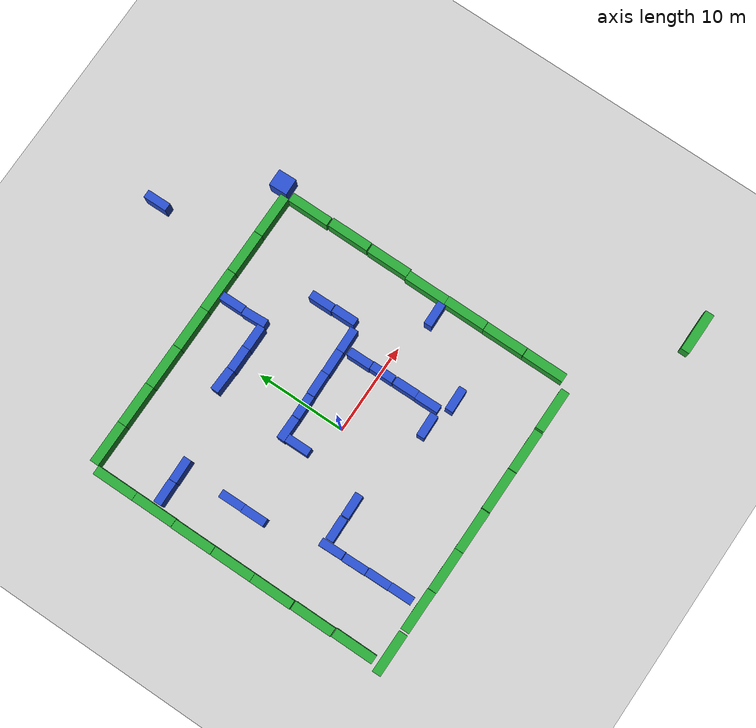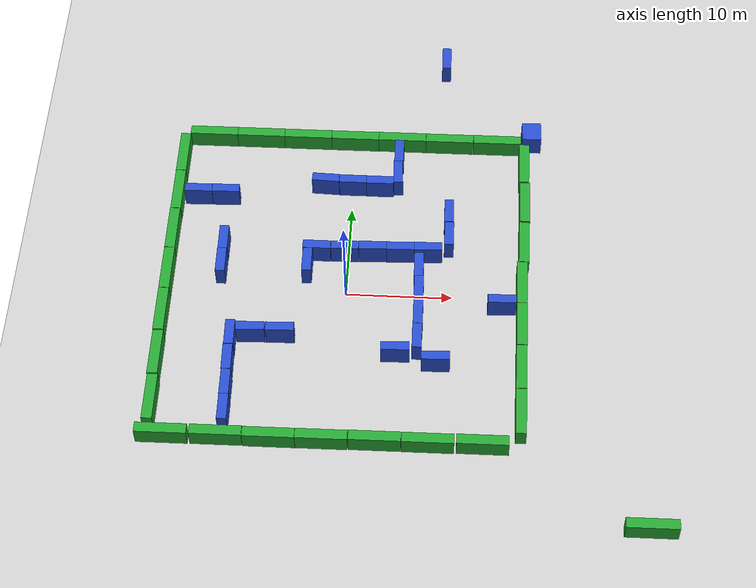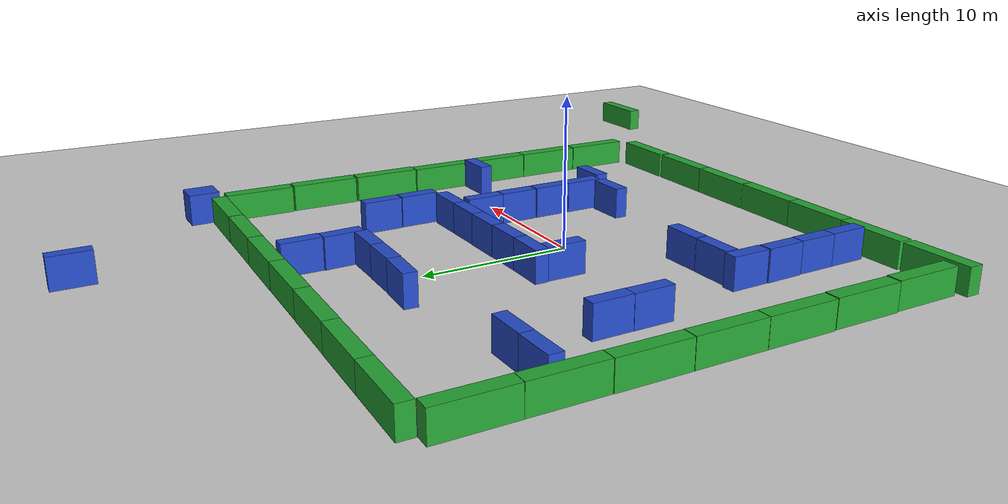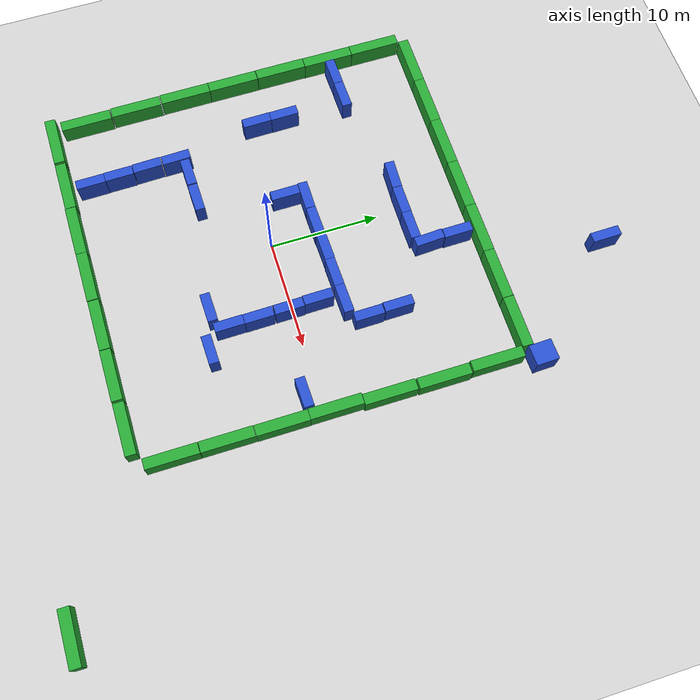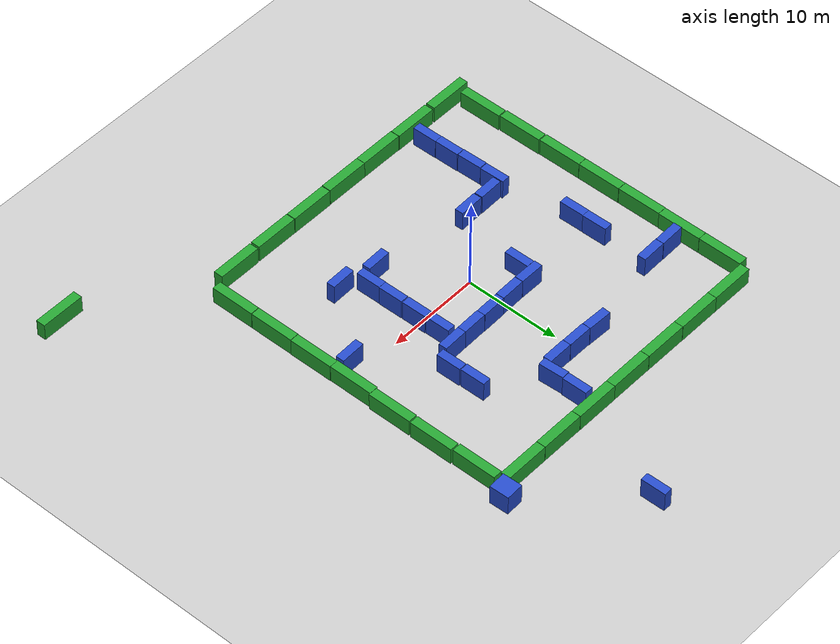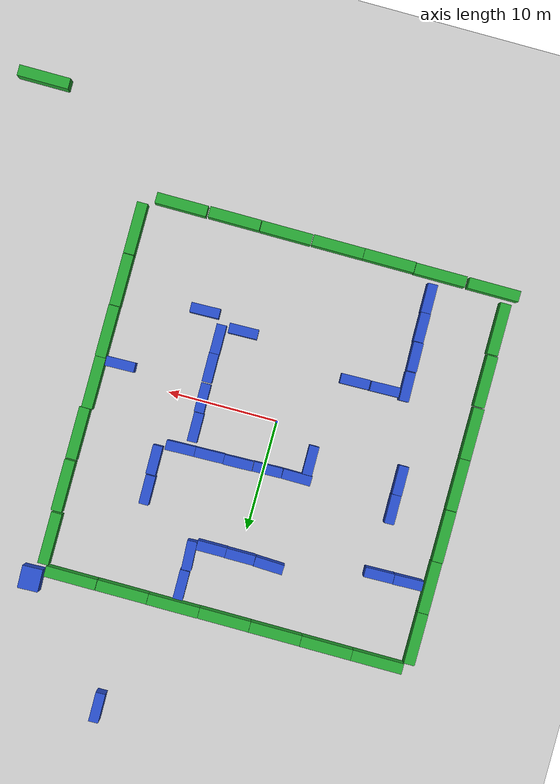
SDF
<sdf version="1.7">
 <world name="default">
  <light name="sun" type="directional">
   <pose>0 0 10 0 -0 0</pose>
   <diffuse>0.8 0.8 0.8 1</diffuse>
   <specular>0.2 0.2 0.2 1</specular>
   <attenuation>
    <range>1000</range>
    <constant>0.9</constant>
    <linear>0.01</linear>
    <quadratic>0.001</quadratic>
   </attenuation>
   <direction>-0.5 0.1 -0.9</direction>
   <spot><inner_angle>0</inner_angle><outer_angle>0</outer_angle><falloff>0</falloff></spot>
  </light>
  <model name="ground_plane">
   <static>1</static>
   <link name="link">
    <collision name="collision">
     <geometry><plane><normal>0 0 1</normal><size>100 100</size></plane></geometry>
     <surface><friction><ode><mu>100</mu><mu2>50</mu2></ode></friction></surface>
    </collision>
    <visual name="visual">
     <cast_shadows>0</cast_shadows>
     <geometry><plane><normal>0 0 1</normal><size>100 100</size></plane></geometry>
     <material>
      <script><uri>file://media/materials/scripts/gazebo.material</uri><name>Gazebo/Grey</name></script>
     </material>
    </visual>
   </link>
  </model>
  <gravity>0 0 -9.8</gravity>
  <magnetic_field>6e-06 2.3e-05 -4.2e-05</magnetic_field>
  <atmosphere type="adiabatic"/>
  <physics type="ode">
   <max_step_size>0.001</max_step_size>
   <real_time_factor>1</real_time_factor>
   <real_time_update_rate>1000</real_time_update_rate>
  </physics>
  <scene><ambient>0.4 0.4 0.4 1</ambient><background>0.7 0.7 0.7 1</background><shadows>1</shadows></scene>
  <audio><device>default</device></audio>
  <spherical_coordinates>
   <surface_model>EARTH_WGS84</surface_model>
   <latitude_deg>0</latitude_deg>
   <longitude_deg>0</longitude_deg>
   <elevation>0</elevation>
   <heading_deg>0</heading_deg>
  </spherical_coordinates>
  <model name="unit_box_clone_clone_clone_clone_0">
   <pose>16.5647 -13.2372 0.913087 1.5712 -0 0.000351</pose>
   <link name="link">
    <inertial>
     <mass>1</mass>
     <inertia>
      <ixx>0.166667</ixx>
      <ixy>0</ixy>
      <ixz>0</ixz>
      <iyy>0.166667</iyy>
      <iyz>0</iyz>
      <izz>0.166667</izz>
     </inertia>
    </inertial>
    <collision name="collision"><geometry><box><size>0.975842 1.82805 4.68867</size></box></geometry></collision>
    <visual name="visual">
     <geometry><box><size>0.975842 1.82805 4.68867</size></box></geometry>
     <material>
      <script><name>Gazebo/Green</name><uri>file://media/materials/scripts/gazebo.material</uri></script>
     </material>
    </visual>
   </link>
  </model>
  <model name="unit_box_clone_clone_clone_clone_0_clone">
   <pose>27.9476 -24.0351 0.913087 1.5712 -0 1.57032</pose>
   <link name="link">
    <inertial>
     <mass>1</mass>
     <inertia>
      <ixx>0.166667</ixx>
      <ixy>0</ixy>
      <ixz>0</ixz>
      <iyy>0.166667</iyy>
      <iyz>0</iyz>
      <izz>0.166667</izz>
     </inertia>
    </inertial>
    <collision name="collision"><geometry><box><size>0.975842 1.82805 4.68867</size></box></geometry></collision>
    <visual name="visual">
     <geometry><box><size>0.975842 1.82805 4.68867</size></box></geometry>
     <material>
      <script><name>Gazebo/Green</name><uri>file://media/materials/scripts/gazebo.material</uri></script>
     </material>
    </visual>
   </link>
  </model>
  <model name="unit_box_clone_clone_clone_clone_0_clone_clone">
   <pose>-1.19477 -16.4099 0.913087 1.5712 -0 1.57032</pose>
   <link name="link">
    <inertial>
     <mass>1</mass>
     <inertia>
      <ixx>0.166667</ixx>
      <ixy>0</ixy>
      <ixz>0</ixz>
      <iyy>0.166667</iyy>
      <iyz>0</iyz>
      <izz>0.166667</izz>
     </inertia>
    </inertial>
    <collision name="collision"><geometry><box><size>0.975842 1.82805 4.68867</size></box></geometry></collision>
    <visual name="visual">
     <geometry><box><size>0.975842 1.82805 4.68867</size></box></geometry>
     <material>
      <script><name>Gazebo/Green</name><uri>file://media/materials/scripts/gazebo.material</uri></script>
     </material>
    </visual>
   </link>
  </model>
  <model name="unit_box_clone_0_clone_clone">
   <pose>4.9362 -6.95728 1.06964 -0 1e-06 0.026942</pose>
   <link name="link">
    <inertial>
     <mass>1</mass>
     <inertia>
      <ixx>0.166667</ixx>
      <ixy>0</ixy>
      <ixz>0</ixz>
      <iyy>0.166667</iyy>
      <iyz>0</iyz>
      <izz>0.166667</izz>
     </inertia>
    </inertial>
    <collision name="collision"><geometry><box><size>2.64153 0.886604 2.13929</size></box></geometry></collision>
    <visual name="visual">
     <geometry><box><size>2.64153 0.886604 2.13929</size></box></geometry>
     <material>
      <script><name>Gazebo/Blue</name><uri>file://media/materials/scripts/gazebo.material</uri></script>
     </material>
    </visual>
   </link>
  </model>
  <model name="unit_box_clone_clone_clone_clone_0_clone_clone_clone">
   <pose>-5.89238 -16.4157 0.913087 1.5712 -0 1.57032</pose>
   <link name="link">
    <inertial>
     <mass>1</mass>
     <inertia>
      <ixx>0.166667</ixx>
      <ixy>0</ixy>
      <ixz>0</ixz>
      <iyy>0.166667</iyy>
      <iyz>0</iyz>
      <izz>0.166667</izz>
     </inertia>
    </inertial>
    <collision name="collision"><geometry><box><size>0.975842 1.82805 4.68867</size></box></geometry></collision>
    <visual name="visual">
     <geometry><box><size>0.975842 1.82805 4.68867</size></box></geometry>
     <material>
      <script><name>Gazebo/Green</name><uri>file://media/materials/scripts/gazebo.material</uri></script>
     </material>
    </visual>
   </link>
  </model>
  <model name="unit_box_clone_clone_clone_clone_0_clone_clone_clone_0">
   <pose>-10.6078 -16.3774 0.913087 1.5712 0 1.57127</pose>
   <link name="link">
    <inertial>
     <mass>1</mass>
     <inertia>
      <ixx>0.166667</ixx>
      <ixy>0</ixy>
      <ixz>0</ixz>
      <iyy>0.166667</iyy>
      <iyz>0</iyz>
      <izz>0.166667</izz>
     </inertia>
    </inertial>
    <collision name="collision"><geometry><box><size>0.975842 1.82805 4.68867</size></box></geometry></collision>
    <visual name="visual">
     <geometry><box><size>0.975842 1.82805 4.68867</size></box></geometry>
     <material>
      <script><name>Gazebo/Green</name><uri>file://media/materials/scripts/gazebo.material</uri></script>
     </material>
    </visual>
   </link>
  </model>
  <model name="unit_box_clone_clone_clone_clone_0_clone_clone_clone_1">
   <pose>-15.5212 -16.383 0.913087 1.5712 0 1.57127</pose>
   <link name="link">
    <inertial>
     <mass>1</mass>
     <inertia>
      <ixx>0.166667</ixx>
      <ixy>0</ixy>
      <ixz>0</ixz>
      <iyy>0.166667</iyy>
      <iyz>0</iyz>
      <izz>0.166667</izz>
     </inertia>
    </inertial>
    <collision name="collision"><geometry><box><size>0.975842 1.82805 4.68867</size></box></geometry></collision>
    <visual name="visual">
     <geometry><box><size>0.975842 1.82805 4.68867</size></box></geometry>
     <material>
      <script><name>Gazebo/Green</name><uri>file://media/materials/scripts/gazebo.material</uri></script>
     </material>
    </visual>
   </link>
  </model>
  <model name="unit_box_clone_clone_clone_clone_0_clone_clone_clone_1_clone">
   <pose>3.56397 -16.3814 0.913087 1.5712 -0 1.57032</pose>
   <link name="link">
    <inertial>
     <mass>1</mass>
     <inertia>
      <ixx>0.166667</ixx>
      <ixy>0</ixy>
      <ixz>0</ixz>
      <iyy>0.166667</iyy>
      <iyz>0</iyz>
      <izz>0.166667</izz>
     </inertia>
    </inertial>
    <collision name="collision"><geometry><box><size>0.975842 1.82805 4.68867</size></box></geometry></collision>
    <visual name="visual">
     <geometry><box><size>0.975842 1.82805 4.68867</size></box></geometry>
     <material>
      <script><name>Gazebo/Green</name><uri>file://media/materials/scripts/gazebo.material</uri></script>
     </material>
    </visual>
   </link>
  </model>
  <model name="unit_box_clone_clone_clone_clone_0_clone_clone_clone_1_clone_0">
   <pose>8.30631 -16.3923 0.913087 1.5712 -0 1.57032</pose>
   <link name="link">
    <inertial>
     <mass>1</mass>
     <inertia>
      <ixx>0.166667</ixx>
      <ixy>0</ixy>
      <ixz>0</ixz>
      <iyy>0.166667</iyy>
      <iyz>0</iyz>
      <izz>0.166667</izz>
     </inertia>
    </inertial>
    <collision name="collision"><geometry><box><size>0.975842 1.82805 4.68867</size></box></geometry></collision>
    <visual name="visual">
     <geometry><box><size>0.975842 1.82805 4.68867</size></box></geometry>
     <material>
      <script><name>Gazebo/Green</name><uri>file://media/materials/scripts/gazebo.material</uri></script>
     </material>
    </visual>
   </link>
  </model>
  <model name="unit_box_clone_clone_clone_clone_0_clone_clone_clone_1_clone_1">
   <pose>13.1905 -16.3598 0.913087 1.5712 -0 1.57032</pose>
   <link name="link">
    <inertial>
     <mass>1</mass>
     <inertia>
      <ixx>0.166667</ixx>
      <ixy>0</ixy>
      <ixz>0</ixz>
      <iyy>0.166667</iyy>
      <iyz>0</iyz>
      <izz>0.166667</izz>
     </inertia>
    </inertial>
    <collision name="collision"><geometry><box><size>0.975842 1.82805 4.68867</size></box></geometry></collision>
    <visual name="visual">
     <geometry><box><size>0.975842 1.82805 4.68867</size></box></geometry>
     <material>
      <script><name>Gazebo/Green</name><uri>file://media/materials/scripts/gazebo.material</uri></script>
     </material>
    </visual>
   </link>
  </model>
  <model name="unit_box_clone_clone_clone_clone_0_clone_0">
   <pose>16.5668 -8.50491 0.913087 1.5712 -0 0.000351</pose>
   <link name="link">
    <inertial>
     <mass>1</mass>
     <inertia>
      <ixx>0.166667</ixx>
      <ixy>0</ixy>
      <ixz>0</ixz>
      <iyy>0.166667</iyy>
      <iyz>0</iyz>
      <izz>0.166667</izz>
     </inertia>
    </inertial>
    <collision name="collision"><geometry><box><size>0.975842 1.82805 4.68867</size></box></geometry></collision>
    <visual name="visual">
     <geometry><box><size>0.975842 1.82805 4.68867</size></box></geometry>
     <material>
      <script><name>Gazebo/Green</name><uri>file://media/materials/scripts/gazebo.material</uri></script>
     </material>
    </visual>
   </link>
  </model>
  <model name="unit_box_clone_clone_clone_clone_0_clone_0_clone">
   <pose>16.5879 -3.7815 0.913087 1.5712 -0 0.000398</pose>
   <link name="link">
    <inertial>
     <mass>1</mass>
     <inertia>
      <ixx>0.166667</ixx>
      <ixy>0</ixy>
      <ixz>0</ixz>
      <iyy>0.166667</iyy>
      <iyz>0</iyz>
      <izz>0.166667</izz>
     </inertia>
    </inertial>
    <collision name="collision"><geometry><box><size>0.975842 1.82805 4.68867</size></box></geometry></collision>
    <visual name="visual">
     <geometry><box><size>0.975842 1.82805 4.68867</size></box></geometry>
     <material>
      <script><name>Gazebo/Green</name><uri>file://media/materials/scripts/gazebo.material</uri></script>
     </material>
    </visual>
   </link>
  </model>
  <model name="unit_box_clone_clone_clone_clone_0_clone_0_clone_0">
   <pose>16.5577 0.91163 0.913087 1.5712 -0 0.000398</pose>
   <link name="link">
    <inertial>
     <mass>1</mass>
     <inertia>
      <ixx>0.166667</ixx>
      <ixy>0</ixy>
      <ixz>0</ixz>
      <iyy>0.166667</iyy>
      <iyz>0</iyz>
      <izz>0.166667</izz>
     </inertia>
    </inertial>
    <collision name="collision"><geometry><box><size>0.975842 1.82805 4.68867</size></box></geometry></collision>
    <visual name="visual">
     <geometry><box><size>0.975842 1.82805 4.68867</size></box></geometry>
     <material>
      <script><name>Gazebo/Green</name><uri>file://media/materials/scripts/gazebo.material</uri></script>
     </material>
    </visual>
   </link>
  </model>
  <model name="unit_box_clone_clone_clone_clone_0_clone_0_clone_1">
   <pose>16.7233 5.61758 0.913087 1.5712 -0 0.000351</pose>
   <link name="link">
    <inertial>
     <mass>1</mass>
     <inertia>
      <ixx>0.166667</ixx>
      <ixy>0</ixy>
      <ixz>0</ixz>
      <iyy>0.166667</iyy>
      <iyz>0</iyz>
      <izz>0.166667</izz>
     </inertia>
    </inertial>
    <collision name="collision"><geometry><box><size>0.975842 1.82805 4.68867</size></box></geometry></collision>
    <visual name="visual">
     <geometry><box><size>0.975842 1.82805 4.68867</size></box></geometry>
     <material>
      <script><name>Gazebo/Green</name><uri>file://media/materials/scripts/gazebo.material</uri></script>
     </material>
    </visual>
   </link>
  </model>
  <model name="unit_box_clone_clone_clone_clone_0_clone_0_clone_2">
   <pose>16.7554 10.4406 0.913087 1.5712 -0 0.000351</pose>
   <link name="link">
    <inertial>
     <mass>1</mass>
     <inertia>
      <ixx>0.166667</ixx>
      <ixy>0</ixy>
      <ixz>0</ixz>
      <iyy>0.166667</iyy>
      <iyz>0</iyz>
      <izz>0.166667</izz>
     </inertia>
    </inertial>
    <collision name="collision"><geometry><box><size>0.975842 1.82805 4.68867</size></box></geometry></collision>
    <visual name="visual">
     <geometry><box><size>0.975842 1.82805 4.68867</size></box></geometry>
     <material>
      <script><name>Gazebo/Green</name><uri>file://media/materials/scripts/gazebo.material</uri></script>
     </material>
    </visual>
   </link>
  </model>
  <model name="unit_box_clone_clone_clone_clone_0_clone_0_clone_3">
   <pose>16.6582 15.2663 0.913087 1.5712 -0 0.000398</pose>
   <link name="link">
    <inertial>
     <mass>1</mass>
     <inertia>
      <ixx>0.166667</ixx>
      <ixy>0</ixy>
      <ixz>0</ixz>
      <iyy>0.166667</iyy>
      <iyz>0</iyz>
      <izz>0.166667</izz>
     </inertia>
    </inertial>
    <collision name="collision"><geometry><box><size>0.975842 1.82805 4.68867</size></box></geometry></collision>
    <visual name="visual">
     <geometry><box><size>0.975842 1.82805 4.68867</size></box></geometry>
     <material>
      <script><name>Gazebo/Green</name><uri>file://media/materials/scripts/gazebo.material</uri></script>
     </material>
    </visual>
   </link>
  </model>
  <model name="unit_box_clone_clone_clone_clone_0_clone_clone_clone_1_clone_1_clone">
   <pose>13.9634 18.1605 0.913087 1.5712 -0 1.57032</pose>
   <link name="link">
    <inertial>
     <mass>1</mass>
     <inertia>
      <ixx>0.166667</ixx>
      <ixy>0</ixy>
      <ixz>0</ixz>
      <iyy>0.166667</iyy>
      <iyz>0</iyz>
      <izz>0.166667</izz>
     </inertia>
    </inertial>
    <collision name="collision"><geometry><box><size>0.975842 1.82805 4.68867</size></box></geometry></collision>
    <visual name="visual">
     <geometry><box><size>0.975842 1.82805 4.68867</size></box></geometry>
     <material>
      <script><name>Gazebo/Green</name><uri>file://media/materials/scripts/gazebo.material</uri></script>
     </material>
    </visual>
   </link>
  </model>
  <model name="unit_box_clone_clone_clone_clone_0_clone_clone_clone_1_clone_1_clone_clone">
   <pose>9.24676 18.1525 0.913087 1.5712 0 1.57127</pose>
   <link name="link">
    <inertial>
     <mass>1</mass>
     <inertia>
      <ixx>0.166667</ixx>
      <ixy>0</ixy>
      <ixz>0</ixz>
      <iyy>0.166667</iyy>
      <iyz>0</iyz>
      <izz>0.166667</izz>
     </inertia>
    </inertial>
    <collision name="collision"><geometry><box><size>0.975842 1.82805 4.68867</size></box></geometry></collision>
    <visual name="visual">
     <geometry><box><size>0.975842 1.82805 4.68867</size></box></geometry>
     <material>
      <script><name>Gazebo/Green</name><uri>file://media/materials/scripts/gazebo.material</uri></script>
     </material>
    </visual>
   </link>
  </model>
  <model name="unit_box_clone_clone_clone_clone_0_clone_clone_clone_1_clone_1_clone_clone_0">
   <pose>4.54895 18.1628 0.913087 1.5712 -0 1.57133</pose>
   <link name="link">
    <inertial>
     <mass>1</mass>
     <inertia>
      <ixx>0.166667</ixx>
      <ixy>0</ixy>
      <ixz>0</ixz>
      <iyy>0.166667</iyy>
      <iyz>0</iyz>
      <izz>0.166667</izz>
     </inertia>
    </inertial>
    <collision name="collision"><geometry><box><size>0.975842 1.82805 4.68867</size></box></geometry></collision>
    <visual name="visual">
     <geometry><box><size>0.975842 1.82805 4.68867</size></box></geometry>
     <material>
      <script><name>Gazebo/Green</name><uri>file://media/materials/scripts/gazebo.material</uri></script>
     </material>
    </visual>
   </link>
  </model>
  <model name="unit_box_clone_clone_clone_clone_0_clone_clone_clone_1_clone_1_clone_clone_1">
   <pose>-0.143333 18.1494 0.913087 1.5712 0 1.57127</pose>
   <link name="link">
    <inertial>
     <mass>1</mass>
     <inertia>
      <ixx>0.166667</ixx>
      <ixy>0</ixy>
      <ixz>0</ixz>
      <iyy>0.166667</iyy>
      <iyz>0</iyz>
      <izz>0.166667</izz>
     </inertia>
    </inertial>
    <collision name="collision"><geometry><box><size>0.975842 1.82805 4.68867</size></box></geometry></collision>
    <visual name="visual">
     <geometry><box><size>0.975842 1.82805 4.68867</size></box></geometry>
     <material>
      <script><name>Gazebo/Green</name><uri>file://media/materials/scripts/gazebo.material</uri></script>
     </material>
    </visual>
   </link>
  </model>
  <model name="unit_box_clone_clone_clone_clone_0_clone_clone_clone_1_clone_1_clone_clone_2">
   <pose>-4.83887 18.1584 0.913087 1.5712 -0 1.57032</pose>
   <link name="link">
    <inertial>
     <mass>1</mass>
     <inertia>
      <ixx>0.166667</ixx>
      <ixy>0</ixy>
      <ixz>0</ixz>
      <iyy>0.166667</iyy>
      <iyz>0</iyz>
      <izz>0.166667</izz>
     </inertia>
    </inertial>
    <collision name="collision"><geometry><box><size>0.975842 1.82805 4.68867</size></box></geometry></collision>
    <visual name="visual">
     <geometry><box><size>0.975842 1.82805 4.68867</size></box></geometry>
     <material>
      <script><name>Gazebo/Green</name><uri>file://media/materials/scripts/gazebo.material</uri></script>
     </material>
    </visual>
   </link>
  </model>
  <model name="unit_box_clone_clone_clone_clone_0_clone_clone_clone_1_clone_1_clone_clone_3">
   <pose>-9.53001 18.1747 0.913087 1.5712 -0 1.57027</pose>
   <link name="link">
    <inertial>
     <mass>1</mass>
     <inertia>
      <ixx>0.166667</ixx>
      <ixy>0</ixy>
      <ixz>0</ixz>
      <iyy>0.166667</iyy>
      <iyz>0</iyz>
      <izz>0.166667</izz>
     </inertia>
    </inertial>
    <collision name="collision"><geometry><box><size>0.975842 1.82805 4.68867</size></box></geometry></collision>
    <visual name="visual">
     <geometry><box><size>0.975842 1.82805 4.68867</size></box></geometry>
     <material>
      <script><name>Gazebo/Green</name><uri>file://media/materials/scripts/gazebo.material</uri></script>
     </material>
    </visual>
   </link>
  </model>
  <model name="unit_box_clone_clone_clone_clone_0_clone_clone_clone_1_clone_1_clone_clone_4">
   <pose>-14.2205 18.1791 0.913087 1.5704 -0 1.57027</pose>
   <link name="link">
    <inertial>
     <mass>1</mass>
     <inertia>
      <ixx>0.166667</ixx>
      <ixy>0</ixy>
      <ixz>0</ixz>
      <iyy>0.166667</iyy>
      <iyz>0</iyz>
      <izz>0.166667</izz>
     </inertia>
    </inertial>
    <collision name="collision"><geometry><box><size>0.975842 1.82805 4.68867</size></box></geometry></collision>
    <visual name="visual">
     <geometry><box><size>0.975842 1.82805 4.68867</size></box></geometry>
     <material>
      <script><name>Gazebo/Green</name><uri>file://media/materials/scripts/gazebo.material</uri></script>
     </material>
    </visual>
   </link>
  </model>
  <model name="unit_box_clone_clone_clone_clone_0_clone_0_clone_3_clone">
   <pose>-17.0038 15.2987 0.913087 1.5712 -0 0.000398</pose>
   <link name="link">
    <inertial>
     <mass>1</mass>
     <inertia>
      <ixx>0.166667</ixx>
      <ixy>0</ixy>
      <ixz>0</ixz>
      <iyy>0.166667</iyy>
      <iyz>0</iyz>
      <izz>0.166667</izz>
     </inertia>
    </inertial>
    <collision name="collision"><geometry><box><size>0.975842 1.82805 4.68867</size></box></geometry></collision>
    <visual name="visual">
     <geometry><box><size>0.975842 1.82805 4.68867</size></box></geometry>
     <material>
      <script><name>Gazebo/Green</name><uri>file://media/materials/scripts/gazebo.material</uri></script>
     </material>
    </visual>
   </link>
  </model>
  <model name="unit_box_clone_clone_clone_clone_0_clone_0_clone_3_clone_clone">
   <pose>-16.9964 10.599 0.913087 1.5712 -0 0.000351</pose>
   <link name="link">
    <inertial>
     <mass>1</mass>
     <inertia>
      <ixx>0.166667</ixx>
      <ixy>0</ixy>
      <ixz>0</ixz>
      <iyy>0.166667</iyy>
      <iyz>0</iyz>
      <izz>0.166667</izz>
     </inertia>
    </inertial>
    <collision name="collision"><geometry><box><size>0.975842 1.82805 4.68867</size></box></geometry></collision>
    <visual name="visual">
     <geometry><box><size>0.975842 1.82805 4.68867</size></box></geometry>
     <material>
      <script><name>Gazebo/Green</name><uri>file://media/materials/scripts/gazebo.material</uri></script>
     </material>
    </visual>
   </link>
  </model>
  <model name="unit_box_clone_clone_clone_clone_0_clone_0_clone_3_clone_clone_0">
   <pose>-17.0233 5.88941 0.913087 1.5712 -0 0.000398</pose>
   <link name="link">
    <inertial>
     <mass>1</mass>
     <inertia>
      <ixx>0.166667</ixx>
      <ixy>0</ixy>
      <ixz>0</ixz>
      <iyy>0.166667</iyy>
      <iyz>0</iyz>
      <izz>0.166667</izz>
     </inertia>
    </inertial>
    <collision name="collision"><geometry><box><size>0.975842 1.82805 4.68867</size></box></geometry></collision>
    <visual name="visual">
     <geometry><box><size>0.975842 1.82805 4.68867</size></box></geometry>
     <material>
      <script><name>Gazebo/Green</name><uri>file://media/materials/scripts/gazebo.material</uri></script>
     </material>
    </visual>
   </link>
  </model>
  <model name="unit_box_clone_clone_clone_clone_0_clone_0_clone_3_clone_clone_1">
   <pose>-17.0124 1.1658 0.913087 1.5712 -0 0.000351</pose>
   <link name="link">
    <inertial>
     <mass>1</mass>
     <inertia>
      <ixx>0.166667</ixx>
      <ixy>0</ixy>
      <ixz>0</ixz>
      <iyy>0.166667</iyy>
      <iyz>0</iyz>
      <izz>0.166667</izz>
     </inertia>
    </inertial>
    <collision name="collision"><geometry><box><size>0.975842 1.82805 4.68867</size></box></geometry></collision>
    <visual name="visual">
     <geometry><box><size>0.975842 1.82805 4.68867</size></box></geometry>
     <material>
      <script><name>Gazebo/Green</name><uri>file://media/materials/scripts/gazebo.material</uri></script>
     </material>
    </visual>
   </link>
  </model>
  <model name="unit_box_clone_clone_clone_clone_0_clone_0_clone_3_clone_clone_2">
   <pose>-17.0097 -3.53843 0.913087 1.5712 -0 0.000398</pose>
   <link name="link">
    <inertial>
     <mass>1</mass>
     <inertia>
      <ixx>0.166667</ixx>
      <ixy>0</ixy>
      <ixz>0</ixz>
      <iyy>0.166667</iyy>
      <iyz>0</iyz>
      <izz>0.166667</izz>
     </inertia>
    </inertial>
    <collision name="collision"><geometry><box><size>0.975842 1.82805 4.68867</size></box></geometry></collision>
    <visual name="visual">
     <geometry><box><size>0.975842 1.82805 4.68867</size></box></geometry>
     <material>
      <script><name>Gazebo/Green</name><uri>file://media/materials/scripts/gazebo.material</uri></script>
     </material>
    </visual>
   </link>
  </model>
  <model name="unit_box_clone_clone_clone_clone_0_clone_0_clone_3_clone_clone_3">
   <pose>-16.9576 -8.32556 0.913087 1.5712 -0 0.000351</pose>
   <link name="link">
    <inertial>
     <mass>1</mass>
     <inertia>
      <ixx>0.166667</ixx>
      <ixy>0</ixy>
      <ixz>0</ixz>
      <iyy>0.166667</iyy>
      <iyz>0</iyz>
      <izz>0.166667</izz>
     </inertia>
    </inertial>
    <collision name="collision"><geometry><box><size>0.975842 1.82805 4.68867</size></box></geometry></collision>
    <visual name="visual">
     <geometry><box><size>0.975842 1.82805 4.68867</size></box></geometry>
     <material>
      <script><name>Gazebo/Green</name><uri>file://media/materials/scripts/gazebo.material</uri></script>
     </material>
    </visual>
   </link>
  </model>
  <model name="unit_box_clone_clone_clone_clone_0_clone_0_clone_3_clone_clone_4">
   <pose>-16.8789 -13.1164 0.913087 1.5712 -0 0.000398</pose>
   <link name="link">
    <inertial>
     <mass>1</mass>
     <inertia>
      <ixx>0.166667</ixx>
      <ixy>0</ixy>
      <ixz>0</ixz>
      <iyy>0.166667</iyy>
      <iyz>0</iyz>
      <izz>0.166667</izz>
     </inertia>
    </inertial>
    <collision name="collision"><geometry><box><size>0.975842 1.82805 4.68867</size></box></geometry></collision>
    <visual name="visual">
     <geometry><box><size>0.975842 1.82805 4.68867</size></box></geometry>
     <material>
      <script><name>Gazebo/Green</name><uri>file://media/materials/scripts/gazebo.material</uri></script>
     </material>
    </visual>
   </link>
  </model>
  <model name="unit_box_clone_0_clone_clone_clone">
   <pose>17.3645 19.1167 1.06964 -0 -1e-06 0.029466</pose>
   <link name="link">
    <inertial>
     <mass>1</mass>
     <inertia>
      <ixx>0.166667</ixx>
      <ixy>0</ixy>
      <ixz>0</ixz>
      <iyy>0.166667</iyy>
      <iyz>0</iyz>
      <izz>0.166667</izz>
     </inertia>
    </inertial>
    <collision name="collision"><geometry><box><size>1.86035 2.04617 2.13929</size></box></geometry></collision>
    <visual name="visual">
     <geometry><box><size>1.86035 2.04617 2.13929</size></box></geometry>
     <material>
      <script><name>Gazebo/Blue</name><uri>file://media/materials/scripts/gazebo.material</uri></script>
     </material>
    </visual>
   </link>
  </model>
  <model name="unit_box_clone_0_clone_clone_clone_0">
   <pose>2.31066 4.38641 1.06964 0 -1e-06 0.025093</pose>
   <link name="link">
    <inertial>
     <mass>1</mass>
     <inertia>
      <ixx>0.166667</ixx>
      <ixy>0</ixy>
      <ixz>0</ixz>
      <iyy>0.166667</iyy>
      <iyz>0</iyz>
      <izz>0.166667</izz>
     </inertia>
    </inertial>
    <collision name="collision"><geometry><box><size>2.64153 0.886603 2.13929</size></box></geometry></collision>
    <visual name="visual">
     <geometry><box><size>2.64153 0.886603 2.13929</size></box></geometry>
     <material>
      <script><name>Gazebo/Blue</name><uri>file://media/materials/scripts/gazebo.material</uri></script>
     </material>
    </visual>
   </link>
  </model>
  <model name="unit_box_clone_0_clone_clone_clone_1">
   <pose>4.95319 4.42303 1.06964 -0 -1e-06 0.026763</pose>
   <link name="link">
    <inertial>
     <mass>1</mass>
     <inertia>
      <ixx>0.166667</ixx>
      <ixy>0</ixy>
      <ixz>0</ixz>
      <iyy>0.166667</iyy>
      <iyz>0</iyz>
      <izz>0.166667</izz>
     </inertia>
    </inertial>
    <collision name="collision"><geometry><box><size>2.64153 0.886603 2.13929</size></box></geometry></collision>
    <visual name="visual">
     <geometry><box><size>2.64153 0.886603 2.13929</size></box></geometry>
     <material>
      <script><name>Gazebo/Blue</name><uri>file://media/materials/scripts/gazebo.material</uri></script>
     </material>
    </visual>
   </link>
  </model>
  <model name="unit_box_clone_0_clone_clone_clone_2">
   <pose>7.59477 4.48712 1.06964 0 -1e-06 0.028132</pose>
   <link name="link">
    <inertial>
     <mass>1</mass>
     <inertia>
      <ixx>0.166667</ixx>
      <ixy>0</ixy>
      <ixz>0</ixz>
      <iyy>0.166667</iyy>
      <iyz>0</iyz>
      <izz>0.166667</izz>
     </inertia>
    </inertial>
    <collision name="collision"><geometry><box><size>2.64153 0.886603 2.13929</size></box></geometry></collision>
    <visual name="visual">
     <geometry><box><size>2.64153 0.886603 2.13929</size></box></geometry>
     <material>
      <script><name>Gazebo/Blue</name><uri>file://media/materials/scripts/gazebo.material</uri></script>
     </material>
    </visual>
   </link>
  </model>
  <model name="unit_box_clone_0_clone_clone_clone_3">
   <pose>8.65482 28.558 1.06964 -1e-06 -0 1.58174</pose>
   <link name="link">
    <inertial>
     <mass>1</mass>
     <inertia>
      <ixx>0.166667</ixx>
      <ixy>0</ixy>
      <ixz>0</ixz>
      <iyy>0.166667</iyy>
      <iyz>0</iyz>
      <izz>0.166667</izz>
     </inertia>
    </inertial>
    <collision name="collision"><geometry><box><size>2.64153 0.886603 2.13929</size></box></geometry></collision>
    <visual name="visual">
     <geometry><box><size>2.64153 0.886603 2.13929</size></box></geometry>
     <material>
      <script><name>Gazebo/Blue</name><uri>file://media/materials/scripts/gazebo.material</uri></script>
     </material>
    </visual>
   </link>
  </model>
  <model name="unit_box_clone_0_clone_clone_clone_3_clone">
   <pose>9.54111 6.10556 1.06964 0 1e-06 1.58175</pose>
   <link name="link">
    <inertial>
     <mass>1</mass>
     <inertia>
      <ixx>0.166667</ixx>
      <ixy>0</ixy>
      <ixz>0</ixz>
      <iyy>0.166667</iyy>
      <iyz>0</iyz>
      <izz>0.166667</izz>
     </inertia>
    </inertial>
    <collision name="collision"><geometry><box><size>2.64153 0.886603 2.13929</size></box></geometry></collision>
    <visual name="visual">
     <geometry><box><size>2.64153 0.886603 2.13929</size></box></geometry>
     <material>
      <script><name>Gazebo/Blue</name><uri>file://media/materials/scripts/gazebo.material</uri></script>
     </material>
    </visual>
   </link>
  </model>
  <model name="unit_box_clone_0_clone_clone_clone_3_clone_0">
   <pose>9.45475 8.81723 1.06964 -1e-06 -0 1.58174</pose>
   <link name="link">
    <inertial>
     <mass>1</mass>
     <inertia>
      <ixx>0.166667</ixx>
      <ixy>0</ixy>
      <ixz>0</ixz>
      <iyy>0.166667</iyy>
      <iyz>0</iyz>
      <izz>0.166667</izz>
     </inertia>
    </inertial>
    <collision name="collision"><geometry><box><size>2.64153 0.886603 2.13929</size></box></geometry></collision>
    <visual name="visual">
     <geometry><box><size>2.64153 0.886603 2.13929</size></box></geometry>
     <material>
      <script><name>Gazebo/Blue</name><uri>file://media/materials/scripts/gazebo.material</uri></script>
     </material>
    </visual>
   </link>
  </model>
  <model name="unit_box_clone_0_clone_clone_clone_3_clone_1">
   <pose>6.78671 2.35615 1.06964 0 -0 1.58172</pose>
   <link name="link">
    <inertial>
     <mass>1</mass>
     <inertia>
      <ixx>0.166667</ixx>
      <ixy>0</ixy>
      <ixz>0</ixz>
      <iyy>0.166667</iyy>
      <iyz>0</iyz>
      <izz>0.166667</izz>
     </inertia>
    </inertial>
    <collision name="collision"><geometry><box><size>2.64153 0.886603 2.13929</size></box></geometry></collision>
    <visual name="visual">
     <geometry><box><size>2.64153 0.886603 2.13929</size></box></geometry>
     <material>
      <script><name>Gazebo/Blue</name><uri>file://media/materials/scripts/gazebo.material</uri></script>
     </material>
    </visual>
   </link>
  </model>
  <model name="unit_box_clone_0_clone_clone_clone_3_clone_2">
   <pose>6.87049 -0.31153 1.06964 0 5e-06 1.58176</pose>
   <link name="link">
    <inertial>
     <mass>1</mass>
     <inertia>
      <ixx>0.166667</ixx>
      <ixy>0</ixy>
      <ixz>0</ixz>
      <iyy>0.166667</iyy>
      <iyz>0</iyz>
      <izz>0.166667</izz>
     </inertia>
    </inertial>
    <collision name="collision"><geometry><box><size>2.64153 0.886603 2.13929</size></box></geometry></collision>
    <visual name="visual">
     <geometry><box><size>2.64153 0.886603 2.13929</size></box></geometry>
     <material>
      <script><name>Gazebo/Blue</name><uri>file://media/materials/scripts/gazebo.material</uri></script>
     </material>
    </visual>
   </link>
  </model>
  <model name="unit_box_clone_0_clone_clone_clone_3_clone_3">
   <pose>6.91125 -3.04995 1.06964 0 -4e-06 1.58297</pose>
   <link name="link">
    <inertial>
     <mass>1</mass>
     <inertia>
      <ixx>0.166667</ixx>
      <ixy>0</ixy>
      <ixz>0</ixz>
      <iyy>0.166667</iyy>
      <iyz>0</iyz>
      <izz>0.166667</izz>
     </inertia>
    </inertial>
    <collision name="collision"><geometry><box><size>2.64153 0.886603 2.13929</size></box></geometry></collision>
    <visual name="visual">
     <geometry><box><size>2.64153 0.886603 2.13929</size></box></geometry>
     <material>
      <script><name>Gazebo/Blue</name><uri>file://media/materials/scripts/gazebo.material</uri></script>
     </material>
    </visual>
   </link>
  </model>
  <model name="unit_box_clone_0_clone_clone_clone_3_clone_4">
   <pose>6.91596 -5.6942 1.06964 0 4e-06 1.58297</pose>
   <link name="link">
    <inertial>
     <mass>1</mass>
     <inertia>
      <ixx>0.166667</ixx>
      <ixy>0</ixy>
      <ixz>0</ixz>
      <iyy>0.166667</iyy>
      <iyz>0</iyz>
      <izz>0.166667</izz>
     </inertia>
    </inertial>
    <collision name="collision"><geometry><box><size>2.64153 0.886603 2.13929</size></box></geometry></collision>
    <visual name="visual">
     <geometry><box><size>2.64153 0.886603 2.13929</size></box></geometry>
     <material>
      <script><name>Gazebo/Blue</name><uri>file://media/materials/scripts/gazebo.material</uri></script>
     </material>
    </visual>
   </link>
  </model>
  <model name="unit_box_clone_0_clone_clone_clone_0_clone">
   <pose>-0.358013 4.29453 1.06964 0 -5e-06 0.02441</pose>
   <link name="link">
    <inertial>
     <mass>1</mass>
     <inertia>
      <ixx>0.166667</ixx>
      <ixy>0</ixy>
      <ixz>0</ixz>
      <iyy>0.166667</iyy>
      <iyz>0</iyz>
      <izz>0.166667</izz>
     </inertia>
    </inertial>
    <collision name="collision"><geometry><box><size>2.64153 0.886603 2.13929</size></box></geometry></collision>
    <visual name="visual">
     <geometry><box><size>2.64153 0.886603 2.13929</size></box></geometry>
     <material>
      <script><name>Gazebo/Blue</name><uri>file://media/materials/scripts/gazebo.material</uri></script>
     </material>
    </visual>
   </link>
  </model>
  <model name="unit_box_clone_0_clone_clone_clone_0_clone_0">
   <pose>-3.02694 4.26952 1.06964 -1e-06 -0 -0.005749</pose>
   <link name="link">
    <inertial>
     <mass>1</mass>
     <inertia>
      <ixx>0.166667</ixx>
      <ixy>0</ixy>
      <ixz>0</ixz>
      <iyy>0.166667</iyy>
      <iyz>0</iyz>
      <izz>0.166667</izz>
     </inertia>
    </inertial>
    <collision name="collision"><geometry><box><size>2.64153 0.886603 2.13929</size></box></geometry></collision>
    <visual name="visual">
     <geometry><box><size>2.64153 0.886603 2.13929</size></box></geometry>
     <material>
      <script><name>Gazebo/Blue</name><uri>file://media/materials/scripts/gazebo.material</uri></script>
     </material>
    </visual>
   </link>
  </model>
  <model name="unit_box_clone_0_clone_clone_clone_3_clone_0_clone">
   <pose>4.32246 16.1292 1.06964 0 -0 1.58172</pose>
   <link name="link">
    <inertial>
     <mass>1</mass>
     <inertia>
      <ixx>0.166667</ixx>
      <ixy>0</ixy>
      <ixz>0</ixz>
      <iyy>0.166667</iyy>
      <iyz>0</iyz>
      <izz>0.166667</izz>
     </inertia>
    </inertial>
    <collision name="collision"><geometry><box><size>2.64153 0.886603 2.13929</size></box></geometry></collision>
    <visual name="visual">
     <geometry><box><size>2.64153 0.886603 2.13929</size></box></geometry>
     <material>
      <script><name>Gazebo/Blue</name><uri>file://media/materials/scripts/gazebo.material</uri></script>
     </material>
    </visual>
   </link>
  </model>
  <model name="unit_box_clone_0_clone_clone_clone_3_clone_0_clone_0">
   <pose>4.33097 13.4522 1.06964 -0 -4e-06 1.62287</pose>
   <link name="link">
    <inertial>
     <mass>1</mass>
     <inertia>
      <ixx>0.166667</ixx>
      <ixy>0</ixy>
      <ixz>0</ixz>
      <iyy>0.166667</iyy>
      <iyz>0</iyz>
      <izz>0.166667</izz>
     </inertia>
    </inertial>
    <collision name="collision"><geometry><box><size>2.64153 0.886603 2.13929</size></box></geometry></collision>
    <visual name="visual">
     <geometry><box><size>2.64153 0.886603 2.13929</size></box></geometry>
     <material>
      <script><name>Gazebo/Blue</name><uri>file://media/materials/scripts/gazebo.material</uri></script>
     </material>
    </visual>
   </link>
  </model>
  <model name="unit_box_clone_0_clone_clone_clone_4">
   <pose>-2.69911 12.4437 1.06964 -0 4e-06 -0.039135</pose>
   <link name="link">
    <inertial>
     <mass>1</mass>
     <inertia>
      <ixx>0.166667</ixx>
      <ixy>0</ixy>
      <ixz>0</ixz>
      <iyy>0.166667</iyy>
      <iyz>0</iyz>
      <izz>0.166667</izz>
     </inertia>
    </inertial>
    <collision name="collision"><geometry><box><size>2.64153 0.886604 2.13929</size></box></geometry></collision>
    <visual name="visual">
     <geometry><box><size>2.64153 0.886604 2.13929</size></box></geometry>
     <material>
      <script><name>Gazebo/Blue</name><uri>file://media/materials/scripts/gazebo.material</uri></script>
     </material>
    </visual>
   </link>
  </model>
  <model name="unit_box_clone_0_clone_clone_clone_4_clone">
   <pose>-0.041952 12.361 1.06964 -0 5e-06 0.000127</pose>
   <link name="link">
    <inertial>
     <mass>1</mass>
     <inertia>
      <ixx>0.166667</ixx>
      <ixy>0</ixy>
      <ixz>0</ixz>
      <iyy>0.166667</iyy>
      <iyz>0</iyz>
      <izz>0.166667</izz>
     </inertia>
    </inertial>
    <collision name="collision"><geometry><box><size>2.64153 0.886604 2.13929</size></box></geometry></collision>
    <visual name="visual">
     <geometry><box><size>2.64153 0.886604 2.13929</size></box></geometry>
     <material>
      <script><name>Gazebo/Blue</name><uri>file://media/materials/scripts/gazebo.material</uri></script>
     </material>
    </visual>
   </link>
  </model>
  <model name="unit_box_clone_0_clone_clone_clone_4_clone_0">
   <pose>2.6028 12.345 1.06964 0 5e-06 0.00655</pose>
   <link name="link">
    <inertial>
     <mass>1</mass>
     <inertia>
      <ixx>0.166667</ixx>
      <ixy>0</ixy>
      <ixz>0</ixz>
      <iyy>0.166667</iyy>
      <iyz>0</iyz>
      <izz>0.166667</izz>
     </inertia>
    </inertial>
    <collision name="collision"><geometry><box><size>2.64153 0.886604 2.13929</size></box></geometry></collision>
    <visual name="visual">
     <geometry><box><size>2.64153 0.886604 2.13929</size></box></geometry>
     <material>
      <script><name>Gazebo/Blue</name><uri>file://media/materials/scripts/gazebo.material</uri></script>
     </material>
    </visual>
   </link>
  </model>
  <model name="unit_box_clone_0_clone_clone_clone_3_clone_2_clone">
   <pose>-10.1703 -14.0853 1.06964 0 4e-06 1.58183</pose>
   <link name="link">
    <inertial>
     <mass>1</mass>
     <inertia>
      <ixx>0.166667</ixx>
      <ixy>0</ixy>
      <ixz>0</ixz>
      <iyy>0.166667</iyy>
      <iyz>0</iyz>
      <izz>0.166667</izz>
     </inertia>
    </inertial>
    <collision name="collision"><geometry><box><size>2.64153 0.886603 2.13929</size></box></geometry></collision>
    <visual name="visual">
     <geometry><box><size>2.64153 0.886603 2.13929</size></box></geometry>
     <material>
      <script><name>Gazebo/Blue</name><uri>file://media/materials/scripts/gazebo.material</uri></script>
     </material>
    </visual>
   </link>
  </model>
  <model name="unit_box_clone_0_clone_clone_clone_3_clone_2_clone_0">
   <pose>-10.2243 -11.4437 1.06964 0 -6e-06 1.58181</pose>
   <link name="link">
    <inertial>
     <mass>1</mass>
     <inertia>
      <ixx>0.166667</ixx>
      <ixy>0</ixy>
      <ixz>0</ixz>
      <iyy>0.166667</iyy>
      <iyz>0</iyz>
      <izz>0.166667</izz>
     </inertia>
    </inertial>
    <collision name="collision"><geometry><box><size>2.64153 0.886603 2.13929</size></box></geometry></collision>
    <visual name="visual">
     <geometry><box><size>2.64153 0.886603 2.13929</size></box></geometry>
     <material>
      <script><name>Gazebo/Blue</name><uri>file://media/materials/scripts/gazebo.material</uri></script>
     </material>
    </visual>
   </link>
  </model>
  <model name="unit_box_clone_0_clone_clone_clone_3_clone_2_clone_1">
   <pose>-10.3163 -8.76662 1.06964 0 4e-06 1.5959</pose>
   <link name="link">
    <inertial>
     <mass>1</mass>
     <inertia>
      <ixx>0.166667</ixx>
      <ixy>0</ixy>
      <ixz>0</ixz>
      <iyy>0.166667</iyy>
      <iyz>0</iyz>
      <izz>0.166667</izz>
     </inertia>
    </inertial>
    <collision name="collision"><geometry><box><size>2.64153 0.886603 2.13929</size></box></geometry></collision>
    <visual name="visual">
     <geometry><box><size>2.64153 0.886603 2.13929</size></box></geometry>
     <material>
      <script><name>Gazebo/Blue</name><uri>file://media/materials/scripts/gazebo.material</uri></script>
     </material>
    </visual>
   </link>
  </model>
  <model name="unit_box_clone_0_clone_clone_clone_4_clone_0_clone">
   <pose>-5.77549 -5.27577 1.06964 0 5e-06 0.024515</pose>
   <link name="link">
    <inertial>
     <mass>1</mass>
     <inertia>
      <ixx>0.166667</ixx>
      <ixy>0</ixy>
      <ixz>0</ixz>
      <iyy>0.166667</iyy>
      <iyz>0</iyz>
      <izz>0.166667</izz>
     </inertia>
    </inertial>
    <collision name="collision"><geometry><box><size>2.64153 0.886604 2.13929</size></box></geometry></collision>
    <visual name="visual">
     <geometry><box><size>2.64153 0.886604 2.13929</size></box></geometry>
     <material>
      <script><name>Gazebo/Blue</name><uri>file://media/materials/scripts/gazebo.material</uri></script>
     </material>
    </visual>
   </link>
  </model>
  <model name="unit_box_clone_0_clone_clone_clone_3_clone_4_clone">
   <pose>-10.3452 -6.04845 1.06964 0 4e-06 1.59501</pose>
   <link name="link">
    <inertial>
     <mass>1</mass>
     <inertia>
      <ixx>0.166667</ixx>
      <ixy>0</ixy>
      <ixz>0</ixz>
      <iyy>0.166667</iyy>
      <iyz>0</iyz>
      <izz>0.166667</izz>
     </inertia>
    </inertial>
    <collision name="collision"><geometry><box><size>2.64153 0.886603 2.13929</size></box></geometry></collision>
    <visual name="visual">
     <geometry><box><size>2.64153 0.886603 2.13929</size></box></geometry>
     <material>
      <script><name>Gazebo/Blue</name><uri>file://media/materials/scripts/gazebo.material</uri></script>
     </material>
    </visual>
   </link>
  </model>
  <model name="unit_box_clone_0_clone_clone_clone_3_clone_4_clone_0">
   <pose>-11.9555 2.11633 1.06964 0 -4e-06 1.58326</pose>
   <link name="link">
    <inertial>
     <mass>1</mass>
     <inertia>
      <ixx>0.166667</ixx>
      <ixy>0</ixy>
      <ixz>0</ixz>
      <iyy>0.166667</iyy>
      <iyz>0</iyz>
      <izz>0.166667</izz>
     </inertia>
    </inertial>
    <collision name="collision"><geometry><box><size>2.64153 0.886603 2.13929</size></box></geometry></collision>
    <visual name="visual">
     <geometry><box><size>2.64153 0.886603 2.13929</size></box></geometry>
     <material>
      <script><name>Gazebo/Blue</name><uri>file://media/materials/scripts/gazebo.material</uri></script>
     </material>
    </visual>
   </link>
  </model>
  <model name="unit_box_clone_0_clone_clone_clone_3_clone_4_clone_1">
   <pose>-11.9668 4.75921 1.06964 0 4e-06 1.58332</pose>
   <link name="link">
    <inertial>
     <mass>1</mass>
     <inertia>
      <ixx>0.166667</ixx>
      <ixy>0</ixy>
      <ixz>0</ixz>
      <iyy>0.166667</iyy>
      <iyz>0</iyz>
      <izz>0.166667</izz>
     </inertia>
    </inertial>
    <collision name="collision"><geometry><box><size>2.64153 0.886603 2.13929</size></box></geometry></collision>
    <visual name="visual">
     <geometry><box><size>2.64153 0.886603 2.13929</size></box></geometry>
     <material>
      <script><name>Gazebo/Blue</name><uri>file://media/materials/scripts/gazebo.material</uri></script>
     </material>
    </visual>
   </link>
  </model>
  <model name="unit_box_clone_0_clone_clone_clone_0_clone_0_clone">
   <pose>-14.9975 10.6558 1.06964 0 1e-06 0.025368</pose>
   <link name="link">
    <inertial>
     <mass>1</mass>
     <inertia>
      <ixx>0.166667</ixx>
      <ixy>0</ixy>
      <ixz>0</ixz>
      <iyy>0.166667</iyy>
      <iyz>0</iyz>
      <izz>0.166667</izz>
     </inertia>
    </inertial>
    <collision name="collision"><geometry><box><size>2.64153 0.886603 2.13929</size></box></geometry></collision>
    <visual name="visual">
     <geometry><box><size>2.64153 0.886603 2.13929</size></box></geometry>
     <material>
      <script><name>Gazebo/Blue</name><uri>file://media/materials/scripts/gazebo.material</uri></script>
     </material>
    </visual>
   </link>
  </model>
  <model name="unit_box_clone_0_clone_clone_clone_0_clone_0_clone_0">
   <pose>-12.342 10.7002 1.06964 -0 -1e-06 0.025364</pose>
   <link name="link">
    <inertial>
     <mass>1</mass>
     <inertia>
      <ixx>0.166667</ixx>
      <ixy>0</ixy>
      <ixz>0</ixz>
      <iyy>0.166667</iyy>
      <iyz>0</iyz>
      <izz>0.166667</izz>
     </inertia>
    </inertial>
    <collision name="collision"><geometry><box><size>2.64153 0.886603 2.13929</size></box></geometry></collision>
    <visual name="visual">
     <geometry><box><size>2.64153 0.886603 2.13929</size></box></geometry>
     <material>
      <script><name>Gazebo/Blue</name><uri>file://media/materials/scripts/gazebo.material</uri></script>
     </material>
    </visual>
   </link>
  </model>
  <model name="unit_box_clone_0_clone_clone_clone_4_clone_0_clone_clone">
   <pose>-8.50933 -5.31845 1.06964 0 5e-06 0.024316</pose>
   <link name="link">
    <inertial>
     <mass>1</mass>
     <inertia>
      <ixx>0.166667</ixx>
      <ixy>0</ixy>
      <ixz>0</ixz>
      <iyy>0.166667</iyy>
      <iyz>0</iyz>
      <izz>0.166667</izz>
     </inertia>
    </inertial>
    <collision name="collision"><geometry><box><size>2.64153 0.886604 2.13929</size></box></geometry></collision>
    <visual name="visual">
     <geometry><box><size>2.64153 0.886604 2.13929</size></box></geometry>
     <material>
      <script><name>Gazebo/Blue</name><uri>file://media/materials/scripts/gazebo.material</uri></script>
     </material>
    </visual>
   </link>
  </model>
  <model name="unit_box_clone_0_clone_clone_clone_4_clone_0_clone_clone_0">
   <pose>14.6839 -1.27903 1.06964 0 1e-06 0.026205</pose>
   <link name="link">
    <inertial>
     <mass>1</mass>
     <inertia>
      <ixx>0.166667</ixx>
      <ixy>0</ixy>
      <ixz>0</ixz>
      <iyy>0.166667</iyy>
      <iyz>0</iyz>
      <izz>0.166667</izz>
     </inertia>
    </inertial>
    <collision name="collision"><geometry><box><size>2.64153 0.886604 2.13929</size></box></geometry></collision>
    <visual name="visual">
     <geometry><box><size>2.64153 0.886604 2.13929</size></box></geometry>
     <material>
      <script><name>Gazebo/Blue</name><uri>file://media/materials/scripts/gazebo.material</uri></script>
     </material>
    </visual>
   </link>
  </model>
  <model name="unit_box_clone_0_clone_clone_clone_4_clone_0_clone_clone_0_clone">
   <pose>8.69394 -7.83659 1.06964 -0 -1e-06 0.026124</pose>
   <link name="link">
    <inertial>
     <mass>1</mass>
     <inertia>
      <ixx>0.166667</ixx>
      <ixy>0</ixy>
      <ixz>0</ixz>
      <iyy>0.166667</iyy>
      <iyz>0</iyz>
      <izz>0.166667</izz>
     </inertia>
    </inertial>
    <collision name="collision"><geometry><box><size>2.64153 0.886604 2.13929</size></box></geometry></collision>
    <visual name="visual">
     <geometry><box><size>2.64153 0.886604 2.13929</size></box></geometry>
     <material>
      <script><name>Gazebo/Blue</name><uri>file://media/materials/scripts/gazebo.material</uri></script>
     </material>
    </visual>
   </link>
  </model>
  <model name="unit_box_clone_0_clone_clone_clone_3_clone_2_clone_2">
   <pose>-3.82536 2.49583 1.06964 0 -1e-06 1.57937</pose>
   <link name="link">
    <inertial>
     <mass>1</mass>
     <inertia>
      <ixx>0.166667</ixx>
      <ixy>0</ixy>
      <ixz>0</ixz>
      <iyy>0.166667</iyy>
      <iyz>0</iyz>
      <izz>0.166667</izz>
     </inertia>
    </inertial>
    <collision name="collision"><geometry><box><size>2.64153 0.886603 2.13929</size></box></geometry></collision>
    <visual name="visual">
     <geometry><box><size>2.64153 0.886603 2.13929</size></box></geometry>
     <material>
      <script><name>Gazebo/Blue</name><uri>file://media/materials/scripts/gazebo.material</uri></script>
     </material>
    </visual>
   </link>
  </model>
 </world>
</sdf>
